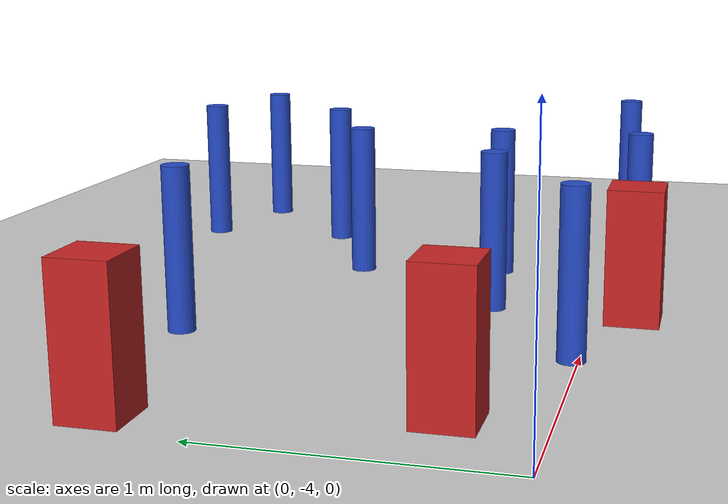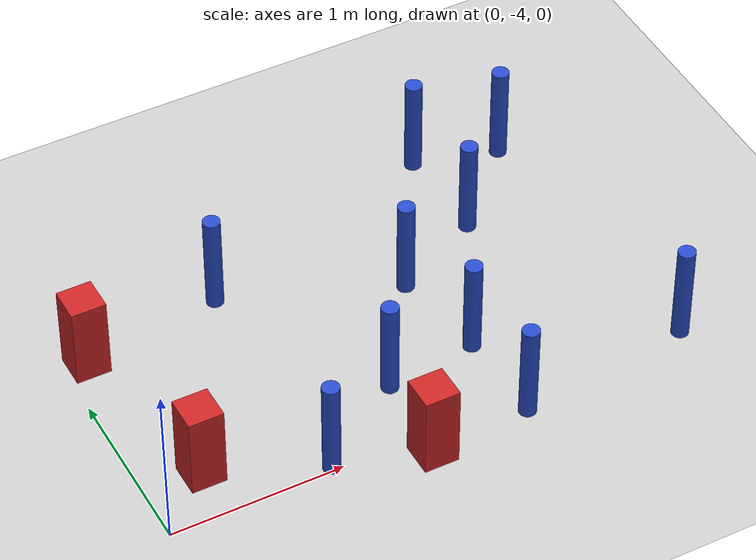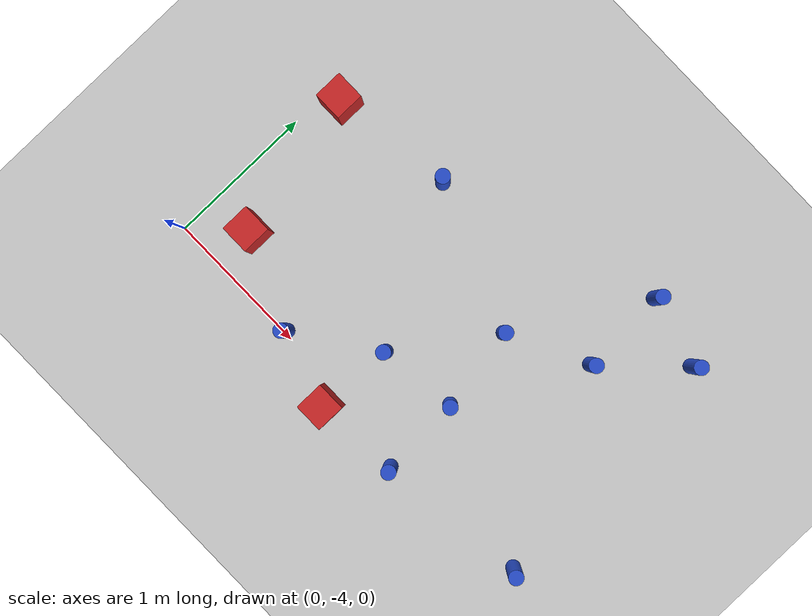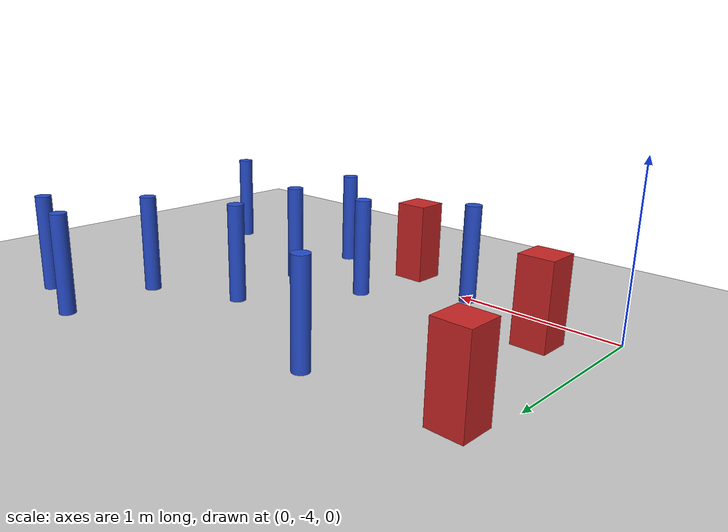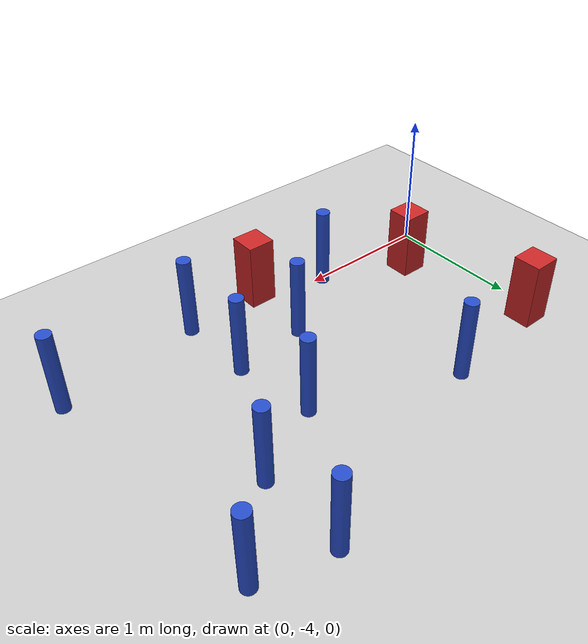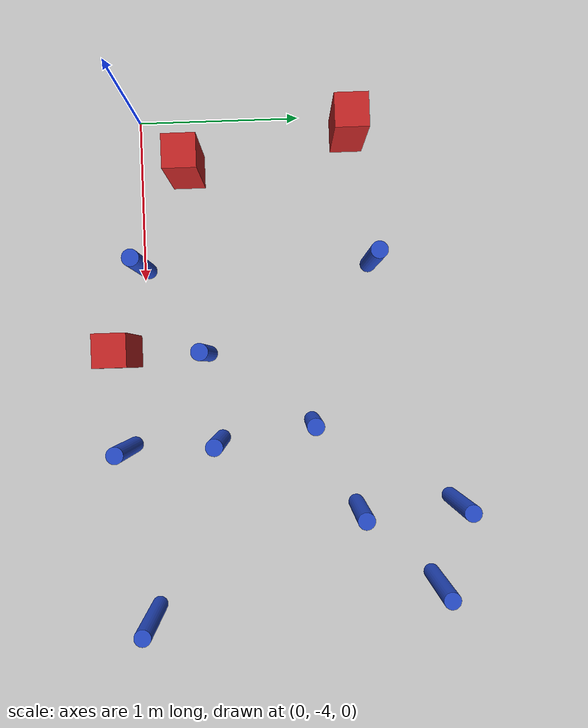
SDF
<sdf version="1.6">
 <world name="default">
  <model name="ground_plane">
   <static>1</static>
   <link name="link">
    <collision name="collision">
     <geometry><plane><normal>0 0 1</normal><size>100 100</size></plane></geometry>
     <surface><friction><ode><mu>100</mu><mu2>50</mu2></ode></friction></surface>
    </collision>
    <visual name="visual">
     <cast_shadows>0</cast_shadows>
     <geometry><plane><normal>0 0 1</normal><size>100 100</size></plane></geometry>
     <material>
      <ambient>1.0 1.0 1.0 1.0</ambient>
      <diffuse>0.8 0.8 0.8 1.0</diffuse>
      <specular>0.01 0.01 0.01 1.000000</specular>
     </material>
    </visual>
   </link>
  </model>
  <model name="pole_obstacle39">
   <static>true</static>
   <pose>0.941948804567 -3.97570511167 7.38925637345e-09 -8.471706928e-08 1.2497676523e-08 -1.7451309301e-07</pose>
   <link name="link">
    <pose>0 0 0.3 0 -0 0</pose>
    <inertial>
     <mass>1</mass>
     <inertia><ixx>0.145833</ixx><ixy>0</ixy><ixz>0</ixz><iyy>0.145833</iyy><iyz>0</iyz><izz>0.125</izz></inertia>
    </inertial>
    <collision name="collision">
     <geometry><cylinder><radius>0.05</radius><length>.6</length></cylinder></geometry>
    </collision>
    <visual name="visual">
     <geometry><cylinder><radius>0.05</radius><length>.6</length></cylinder></geometry>
     <material>
      <script><name>Gazebo/Blue</name><uri>file://media/materials/scripts/gazebo.material</uri></script>
     </material>
    </visual>
   </link>
  </model>
  <model name="pole_obstacle42">
   <static>true</static>
   <pose>2.45680966726 -2.70772601505 7.38925637345e-09 -8.47170692798e-08 1.24976764939e-08 -1.74513093025e-07</pose>
   <link name="link">
    <pose>0 0 0.3 0 -0 0</pose>
    <inertial>
     <mass>1</mass>
     <inertia><ixx>0.145833</ixx><ixy>0</ixy><ixz>0</ixz><iyy>0.145833</iyy><iyz>0</iyz><izz>0.125</izz></inertia>
    </inertial>
    <collision name="collision">
     <geometry><cylinder><radius>0.05</radius><length>.6</length></cylinder></geometry>
    </collision>
    <visual name="visual">
     <geometry><cylinder><radius>0.05</radius><length>.6</length></cylinder></geometry>
     <material>
      <script><name>Gazebo/Blue</name><uri>file://media/materials/scripts/gazebo.material</uri></script>
     </material>
    </visual>
   </link>
  </model>
  <model name="pole_obstacle93">
   <static>true</static>
   <pose>0.945299777563 -2.58377284101 7.38925637345e-09 -8.47170692799e-08 1.2497676509e-08 -1.74513093016e-07</pose>
   <link name="link">
    <pose>0 0 0.3 0 -0 0</pose>
    <inertial>
     <mass>1</mass>
     <inertia><ixx>0.145833</ixx><ixy>0</ixy><ixz>0</ixz><iyy>0.145833</iyy><iyz>0</iyz><izz>0.125</izz></inertia>
    </inertial>
    <collision name="collision">
     <geometry><cylinder><radius>0.05</radius><length>.6</length></cylinder></geometry>
    </collision>
    <visual name="visual">
     <geometry><cylinder><radius>0.05</radius><length>.6</length></cylinder></geometry>
     <material>
      <script><name>Gazebo/Blue</name><uri>file://media/materials/scripts/gazebo.material</uri></script>
     </material>
    </visual>
   </link>
  </model>
  <model name="pole_obstacle104">
   <static>true</static>
   <pose>1.9210064453 -2.97251089332 7.38925637345e-09 -8.47170692799e-08 1.24976765053e-08 -1.74513093017e-07</pose>
   <link name="link">
    <pose>0 0 0.3 0 -0 0</pose>
    <inertial>
     <mass>1</mass>
     <inertia><ixx>0.145833</ixx><ixy>0</ixy><ixz>0</ixz><iyy>0.145833</iyy><iyz>0</iyz><izz>0.125</izz></inertia>
    </inertial>
    <collision name="collision">
     <geometry><cylinder><radius>0.05</radius><length>.6</length></cylinder></geometry>
    </collision>
    <visual name="visual">
     <geometry><cylinder><radius>0.05</radius><length>.6</length></cylinder></geometry>
     <material>
      <script><name>Gazebo/Blue</name><uri>file://media/materials/scripts/gazebo.material</uri></script>
     </material>
    </visual>
   </link>
  </model>
  <model name="square_post_obstacle99">
   <static>true</static>
   <pose>0.123946242135 -2.70105854656 1.91545236811e-07 -7.35059704564e-06 1.12565212e-07 2.39332434364e-05</pose>
   <link name="link">
    <pose>0 0 0.25 0 -0 0</pose>
    <inertial>
     <mass>100</mass>
     <inertia>
      <ixx>0.166667</ixx>
      <ixy>0</ixy>
      <ixz>0</ixz>
      <iyy>0.166667</iyy>
      <iyz>0</iyz>
      <izz>0.166667</izz>
     </inertia>
    </inertial>
    <collision name="collision"><geometry><box><size>.2 .2 .5</size></box></geometry></collision>
    <visual name="visual">
     <geometry><box><size>.2 .2 .5</size></box></geometry>
     <material>
      <script><name>Gazebo/Red</name><uri>file://media/materials/scripts/gazebo.material</uri></script>
     </material>
    </visual>
   </link>
  </model>
  <model name="square_post_obstacle108">
   <static>true</static>
   <pose>0.323722808459 -3.6996743075 1.91545236811e-07 -7.35059704564e-06 1.12565212e-07 2.39332434364e-05</pose>
   <link name="link">
    <pose>0 0 0.25 0 -0 0</pose>
    <inertial>
     <mass>100</mass>
     <inertia>
      <ixx>0.166667</ixx>
      <ixy>0</ixy>
      <ixz>0</ixz>
      <iyy>0.166667</iyy>
      <iyz>0</iyz>
      <izz>0.166667</izz>
     </inertia>
    </inertial>
    <collision name="collision"><geometry><box><size>.2 .2 .5</size></box></geometry></collision>
    <visual name="visual">
     <geometry><box><size>.2 .2 .5</size></box></geometry>
     <material>
      <script><name>Gazebo/Red</name><uri>file://media/materials/scripts/gazebo.material</uri></script>
     </material>
    </visual>
   </link>
  </model>
  <model name="square_post_obstacle124">
   <static>true</static>
   <pose>1.45263293414 -4.13727900936 1.91545236811e-07 -7.35059704564e-06 1.12565212e-07 2.39332434364e-05</pose>
   <link name="link">
    <pose>0 0 0.25 0 -0 0</pose>
    <inertial>
     <mass>100</mass>
     <inertia>
      <ixx>0.166667</ixx>
      <ixy>0</ixy>
      <ixz>0</ixz>
      <iyy>0.166667</iyy>
      <iyz>0</iyz>
      <izz>0.166667</izz>
     </inertia>
    </inertial>
    <collision name="collision"><geometry><box><size>.2 .2 .5</size></box></geometry></collision>
    <visual name="visual">
     <geometry><box><size>.2 .2 .5</size></box></geometry>
     <material>
      <script><name>Gazebo/Red</name><uri>file://media/materials/scripts/gazebo.material</uri></script>
     </material>
    </visual>
   </link>
  </model>
  <model name="pole_obstacle170">
   <static>true</static>
   <pose>2.91710588758 -2.24461382649 7.38925637345e-09 -8.47170692798e-08 1.24976764939e-08 -1.74513093025e-07</pose>
   <link name="link">
    <pose>0 0 0.3 0 -0 0</pose>
    <inertial>
     <mass>1</mass>
     <inertia><ixx>0.145833</ixx><ixy>0</ixy><ixz>0</ixz><iyy>0.145833</iyy><iyz>0</iyz><izz>0.125</izz></inertia>
    </inertial>
    <collision name="collision">
     <geometry><cylinder><radius>0.05</radius><length>.6</length></cylinder></geometry>
    </collision>
    <visual name="visual">
     <geometry><cylinder><radius>0.05</radius><length>.6</length></cylinder></geometry>
     <material>
      <script><name>Gazebo/Blue</name><uri>file://media/materials/scripts/gazebo.material</uri></script>
     </material>
    </visual>
   </link>
  </model>
  <model name="pole_obstacle176">
   <static>true</static>
   <pose>2.04278611069 -4.10083202101 7.38925637345e-09 -8.47170692799e-08 1.24976765014e-08 -1.7451309302e-07</pose>
   <link name="link">
    <pose>0 0 0.3 0 -0 0</pose>
    <inertial>
     <mass>1</mass>
     <inertia><ixx>0.145833</ixx><ixy>0</ixy><ixz>0</ixz><iyy>0.145833</iyy><iyz>0</iyz><izz>0.125</izz></inertia>
    </inertial>
    <collision name="collision">
     <geometry><cylinder><radius>0.05</radius><length>.6</length></cylinder></geometry>
    </collision>
    <visual name="visual">
     <geometry><cylinder><radius>0.05</radius><length>.6</length></cylinder></geometry>
     <material>
      <script><name>Gazebo/Blue</name><uri>file://media/materials/scripts/gazebo.material</uri></script>
     </material>
    </visual>
   </link>
  </model>
  <model name="pole_obstacle179">
   <static>true</static>
   <pose>2.01729876926 -3.54404652601 7.38925637345e-09 -8.47170692797e-08 1.24976764891e-08 -1.74513093027e-07</pose>
   <link name="link">
    <pose>0 0 0.3 0 -0 0</pose>
    <inertial>
     <mass>1</mass>
     <inertia><ixx>0.145833</ixx><ixy>0</ixy><ixz>0</ixz><iyy>0.145833</iyy><iyz>0</iyz><izz>0.125</izz></inertia>
    </inertial>
    <collision name="collision">
     <geometry><cylinder><radius>0.05</radius><length>.6</length></cylinder></geometry>
    </collision>
    <visual name="visual">
     <geometry><cylinder><radius>0.05</radius><length>.6</length></cylinder></geometry>
     <material>
      <script><name>Gazebo/Blue</name><uri>file://media/materials/scripts/gazebo.material</uri></script>
     </material>
    </visual>
   </link>
  </model>
  <model name="pole_obstacle197">
   <static>true</static>
   <pose>1.48094805827 -3.60837556745 7.38925637345e-09 -8.47170692799e-08 1.24976765053e-08 -1.74513093017e-07</pose>
   <link name="link">
    <pose>0 0 0.3 0 -0 0</pose>
    <inertial>
     <mass>1</mass>
     <inertia><ixx>0.145833</ixx><ixy>0</ixy><ixz>0</ixz><iyy>0.145833</iyy><iyz>0</iyz><izz>0.125</izz></inertia>
    </inertial>
    <collision name="collision">
     <geometry><cylinder><radius>0.05</radius><length>.6</length></cylinder></geometry>
    </collision>
    <visual name="visual">
     <geometry><cylinder><radius>0.05</radius><length>.6</length></cylinder></geometry>
     <material>
      <script><name>Gazebo/Blue</name><uri>file://media/materials/scripts/gazebo.material</uri></script>
     </material>
    </visual>
   </link>
  </model>
  <model name="pole_obstacle206">
   <static>true</static>
   <pose>2.43388463403 -2.11242974367 7.38925637345e-09 -8.47170692798e-08 1.24976764939e-08 -1.74513093025e-07</pose>
   <link name="link">
    <pose>0 0 0.3 0 -0 0</pose>
    <inertial>
     <mass>1</mass>
     <inertia><ixx>0.145833</ixx><ixy>0</ixy><ixz>0</ixz><iyy>0.145833</iyy><iyz>0</iyz><izz>0.125</izz></inertia>
    </inertial>
    <collision name="collision">
     <geometry><cylinder><radius>0.05</radius><length>.6</length></cylinder></geometry>
    </collision>
    <visual name="visual">
     <geometry><cylinder><radius>0.05</radius><length>.6</length></cylinder></geometry>
     <material>
      <script><name>Gazebo/Blue</name><uri>file://media/materials/scripts/gazebo.material</uri></script>
     </material>
    </visual>
   </link>
  </model>
  <model name="pole_obstacle221">
   <static>true</static>
   <pose>3.0654557508 -3.9795271409 7.38925637345e-09 -8.47170692797e-08 1.24976764881e-08 -1.74513093029e-07</pose>
   <link name="link">
    <pose>0 0 0.3 0 -0 0</pose>
    <inertial>
     <mass>1</mass>
     <inertia><ixx>0.145833</ixx><ixy>0</ixy><ixz>0</ixz><iyy>0.145833</iyy><iyz>0</iyz><izz>0.125</izz></inertia>
    </inertial>
    <collision name="collision">
     <geometry><cylinder><radius>0.05</radius><length>.6</length></cylinder></geometry>
    </collision>
    <visual name="visual">
     <geometry><cylinder><radius>0.05</radius><length>.6</length></cylinder></geometry>
     <material>
      <script><name>Gazebo/Blue</name><uri>file://media/materials/scripts/gazebo.material</uri></script>
     </material>
    </visual>
   </link>
  </model>
 </world>
</sdf>
